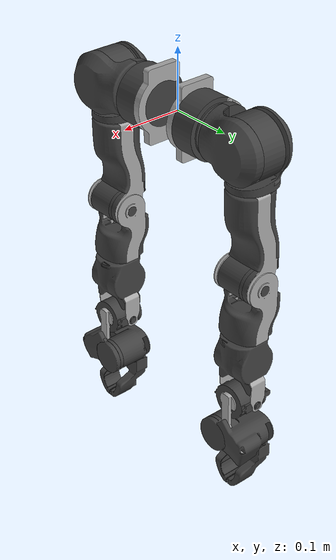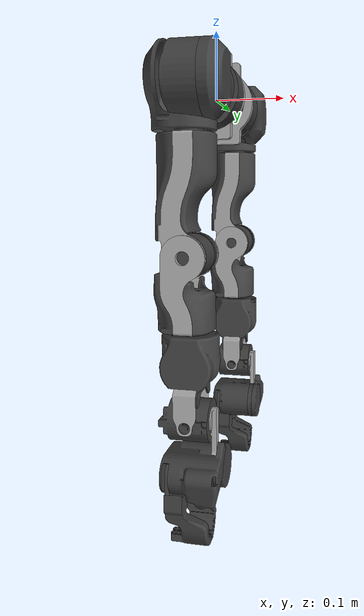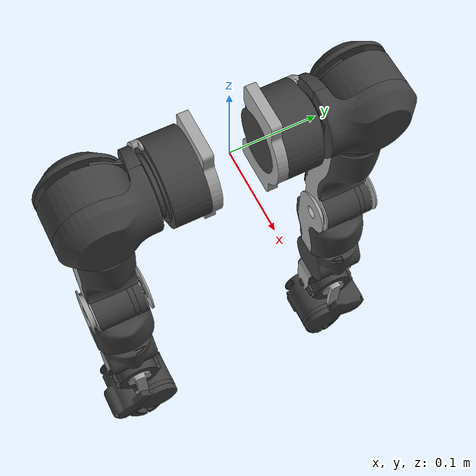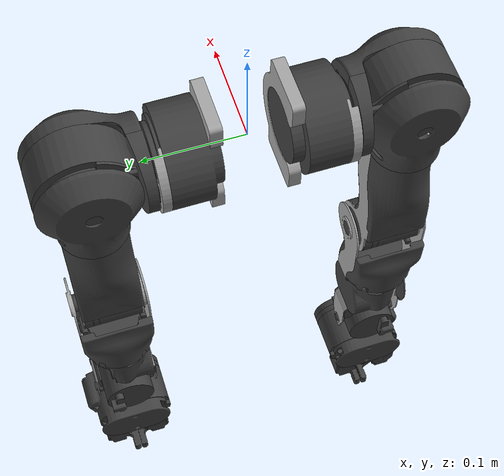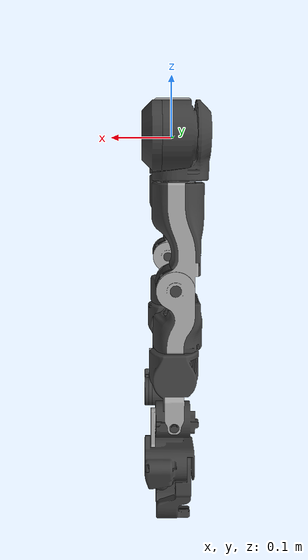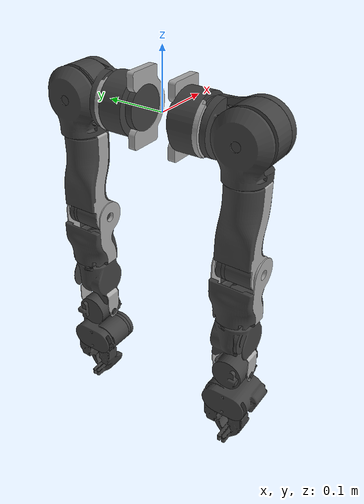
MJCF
<?xml version='1.0' encoding='utf-8'?>
<mujoco model="openarm_v20_visual">
  <default>
    <joint stiffness="0" ref="0.0" />
    <default class="robot">
      <default class="motor_DM8009">
        <joint frictionloss="0.2" damping="1.0" armature="0.0081" limited="true" type="hinge" />
        <motor forcelimited="true" forcerange="-40 40" />
      </default>
      <default class="motor_DM4340">
        <joint frictionloss="0.1" damping="0.9" armature="0.1600" limited="true" type="hinge" />
        <motor forcelimited="true" forcerange="-27 27" />
      </default>
      <default class="motor_DM4310">
        <joint frictionloss="0.04" damping="0.9" armature="0.0100" limited="true" type="hinge" />
        <motor forcelimited="true" forcerange="-7 7" />
      </default>
      <default class="motor_DM3507">
        <joint frictionloss="0.01" damping="0.01" armature="0.0049" limited="true" type="hinge" />
        <motor forcelimited="true" forcerange="-7 7" />
      </default>
      <default class="motor_finger">
        <joint limited="true" type="hinge" damping="2" />
        <position forcelimited="true" forcerange="-333 333" ctrllimited="true" ctrlrange="0 0.7854" />
      </default>
      <default class="lifter">
        <joint limited="true" type="slide" damping="50" />
        <position forcelimited="true" forcerange="-3000 3000" ctrllimited="true" ctrlrange="0 0.3" />
      </default>
      <default class="position_DM8009">
        <position kp="200" kv="150" forcelimited="true" forcerange="-40 40" />
      </default>
      <default class="position_DM4340">
        <position kp="100" kv="30" forcelimited="true" forcerange="-27 27" />
      </default>
      <default class="position_DM4310">
        <position kp="200" kv="5" forcelimited="true" forcerange="-7 7" />
      </default>
      <default class="position_DM3507">
        <position kp="200" kv="5" forcelimited="true" forcerange="-7 7" />
      </default>
      <default class="position_lifter">
        <position kp="8000" kv="4000" forcelimited="true" forcerange="-3000 3000" />
      </default>
      <default class="collision">
        <geom material="collision_material" condim="3" conaffinity="1" priority="1" group="3" solref="0.005 1" friction="1 0.01 0.01" />
        <equality solimp="0.99 0.999 1e-05" solref="0.005 1" />
      </default>
      <default class="visual">
        <geom material="visualgeom" contype="0" conaffinity="0" group="2" />
      </default>
    </default>
  </default>
  <compiler angle="radian" meshdir="assets" />
  <asset>
    <material name="metal_silver" rgba="0.65 0.65 0.65 1.0" specular="1.0" shininess="0.9" reflectance="0.8" />
    <material name="matte_black" rgba="0.247 0.247 0.247 1.0" reflectance="0.05" shininess="0.5" />
    <material name="collision_material" rgba="0.8 0.2 0.2 0.5" />
    <material name="visualgeom" rgba="0.7 0.7 0.7 1" />
    <material name="openarm_body_link0_material" rgba="0.752941 0.752941 0.752941 1" />
    <material name="openarm_silver" rgba="0.627451 0.627451 0.627451 1" specular="1.0" shininess="0.9" reflectance="0.8" />
    <material name="openarm_pale_blue" rgba="0.866667 0.909804 1 1" />
    <material name="openarm_warm_white" rgba="1 0.94902 0.909804 1" />
    <material name="openarm_silver_2" rgba="0.752941 0.752941 0.752941 1" specular="1.0" shininess="0.9" reflectance="0.8" />
    <material name="openarm_dark_gray" rgba="0.247 0.247 0.247 1.0" reflectance="0.05" shininess="0.5" />
    <material name="openarm_neutral_gray" rgba="0.247 0.247 0.247 1.0" reflectance="0.05" shininess="0.5" />
    <material name="openarm_medium_gray" rgba="0.247 0.247 0.247 1.0" reflectance="0.05" shininess="0.5" />
    <mesh name="base_link_left_collision_00" content_type="model/stl" file="collision/base_link.stl" scale="1 -1 1" />
    <mesh name="link1_left_collision_00" content_type="model/stl" file="collision/link1.stl" scale="1 -1 1" />
    <mesh name="link2_left_collision_00" content_type="model/stl" file="collision/link2.stl" scale="1 -1 1" />
    <mesh name="link3_left_collision_00" content_type="model/stl" file="collision/link3.stl" />
    <mesh name="link4_left_collision_00" content_type="model/stl" file="collision/link4.stl" />
    <mesh name="link5_left_collision_00" content_type="model/stl" file="collision/link5_part_00.stl" scale="1 -1 1" />
    <mesh name="link5_left_collision_01" content_type="model/stl" file="collision/link5_part_01.stl" scale="1 -1 1" />
    <mesh name="link5_left_collision_02" content_type="model/stl" file="collision/link5_part_02.stl" scale="1 -1 1" />
    <mesh name="link6_left_collision_00" content_type="model/stl" file="collision/link6.stl" scale="1 -1 1" />
    <mesh name="ee_base_link_left_collision_00" content_type="model/stl" file="collision/ee_base_link.stl" scale="1 -1 1" />
    <mesh name="finger_inner_left_collision_00" content_type="model/stl" file="collision/finger_inner_part_00.stl" scale="1 -1 1" />
    <mesh name="finger_inner_left_collision_01" content_type="model/stl" file="collision/finger_inner_part_01.stl" scale="1 -1 1" />
    <mesh name="finger_inner_left_collision_02" content_type="model/stl" file="collision/finger_inner_part_02.stl" scale="1 -1 1" />
    <mesh name="finger_outer_left_collision_00" content_type="model/stl" file="collision/finger_outer_part_00.stl" scale="1 -1 1" />
    <mesh name="finger_outer_left_collision_01" content_type="model/stl" file="collision/finger_outer_part_01.stl" scale="1 -1 1" />
    <mesh name="finger_outer_left_collision_02" content_type="model/stl" file="collision/finger_outer_part_02.stl" scale="1 -1 1" />
    <mesh name="base_link_right_collision_00" content_type="model/stl" file="collision/base_link.stl" />
    <mesh name="link1_right_collision_00" content_type="model/stl" file="collision/link1.stl" />
    <mesh name="link2_right_collision_00" content_type="model/stl" file="collision/link2.stl" />
    <mesh name="link3_right_collision_00" content_type="model/stl" file="collision/link3.stl" />
    <mesh name="link4_right_collision_00" content_type="model/stl" file="collision/link4.stl" />
    <mesh name="link5_right_collision_00" content_type="model/stl" file="collision/link5_part_00.stl" />
    <mesh name="link5_right_collision_01" content_type="model/stl" file="collision/link5_part_01.stl" />
    <mesh name="link5_right_collision_02" content_type="model/stl" file="collision/link5_part_02.stl" />
    <mesh name="link6_right_collision_00" content_type="model/stl" file="collision/link6.stl" />
    <mesh name="ee_base_link_right_collision_00" content_type="model/stl" file="collision/ee_base_link.stl" />
    <mesh name="finger_inner_right_collision_00" content_type="model/stl" file="collision/finger_inner_part_00.stl" />
    <mesh name="finger_inner_right_collision_01" content_type="model/stl" file="collision/finger_inner_part_01.stl" />
    <mesh name="finger_inner_right_collision_02" content_type="model/stl" file="collision/finger_inner_part_02.stl" />
    <mesh name="finger_outer_right_collision_00" content_type="model/stl" file="collision/finger_outer_part_00.stl" />
    <mesh name="finger_outer_right_collision_01" content_type="model/stl" file="collision/finger_outer_part_01.stl" />
    <mesh name="finger_outer_right_collision_02" content_type="model/stl" file="collision/finger_outer_part_02.stl" />
    <mesh name="link0_0_left" file="visual/arm/link0_0.obj" scale="1 -1 1" />
    <mesh name="link0_1_left" file="visual/arm/link0_1.obj" scale="1 -1 1" />
    <mesh name="link0_2_left" file="visual/arm/link0_2.obj" scale="1 -1 1" />
    <mesh name="link0_0_right" file="visual/arm/link0_0.obj" />
    <mesh name="link0_1_right" file="visual/arm/link0_1.obj" />
    <mesh name="link0_2_right" file="visual/arm/link0_2.obj" />
    <mesh name="link1_0_left" file="visual/arm/link1_0.obj" scale="1 -1 1" />
    <mesh name="link1_1_left" file="visual/arm/link1_1.obj" scale="1 -1 1" />
    <mesh name="link1_2_left" file="visual/arm/link1_2.obj" scale="1 -1 1" />
    <mesh name="link1_0_right" file="visual/arm/link1_0.obj" />
    <mesh name="link1_1_right" file="visual/arm/link1_1.obj" />
    <mesh name="link1_2_right" file="visual/arm/link1_2.obj" />
    <mesh name="link2_0_left" file="visual/arm/link2_0.obj" scale="1 -1 1" />
    <mesh name="link2_0_right" file="visual/arm/link2_0.obj" />
    <mesh name="link3_0_left" file="visual/arm/link3_0.obj" />
    <mesh name="link3_1_left" file="visual/arm/link3_1.obj" />
    <mesh name="link3_2_left" file="visual/arm/link3_2.obj" />
    <mesh name="link3_3_left" file="visual/arm/link3_3.obj" />
    <mesh name="link3_4_left" file="visual/arm/link3_4.obj" />
    <mesh name="link3_5_left" file="visual/arm/link3_5.obj" />
    <mesh name="link3_6_left" file="visual/arm/link3_6.obj" />
    <mesh name="link3_0_right" file="visual/arm/link3_0.obj" />
    <mesh name="link3_1_right" file="visual/arm/link3_1.obj" />
    <mesh name="link3_2_right" file="visual/arm/link3_2.obj" />
    <mesh name="link3_3_right" file="visual/arm/link3_3.obj" />
    <mesh name="link3_4_right" file="visual/arm/link3_4.obj" />
    <mesh name="link3_5_right" file="visual/arm/link3_5.obj" />
    <mesh name="link3_6_right" file="visual/arm/link3_6.obj" />
    <mesh name="link4_0_left" file="visual/arm/link4_0.obj" />
    <mesh name="link4_1_left" file="visual/arm/link4_1.obj" />
    <mesh name="link4_2_left" file="visual/arm/link4_2.obj" />
    <mesh name="link4_3_left" file="visual/arm/link4_3.obj" />
    <mesh name="link4_0_right" file="visual/arm/link4_0.obj" />
    <mesh name="link4_1_right" file="visual/arm/link4_1.obj" />
    <mesh name="link4_2_right" file="visual/arm/link4_2.obj" />
    <mesh name="link4_3_right" file="visual/arm/link4_3.obj" />
    <mesh name="link5_0_left" file="visual/arm/link5_0.obj" scale="1 -1 1" />
    <mesh name="link5_1_left" file="visual/arm/link5_1.obj" scale="1 -1 1" />
    <mesh name="link5_0_right" file="visual/arm/link5_0.obj" />
    <mesh name="link5_1_right" file="visual/arm/link5_1.obj" />
    <mesh name="link6_0_left" file="visual/arm/link6_0.obj" scale="1 -1 1" />
    <mesh name="link6_0_right" file="visual/arm/link6_0.obj" />
    <mesh name="hand_1_left" file="visual/gripper/hand_1.obj" scale="1 -1 1" />
    <mesh name="hand_2_left" file="visual/gripper/hand_2.obj" scale="1 -1 1" />
    <mesh name="hand_3_left" file="visual/gripper/hand_3.obj" scale="1 -1 1" />
    <mesh name="hand_4_left" file="visual/gripper/hand_4.obj" scale="1 -1 1" />
    <mesh name="hand_5_left" file="visual/gripper/hand_5.obj" scale="1 -1 1" />
    <mesh name="hand_1_right" file="visual/gripper/hand_1.obj" />
    <mesh name="hand_2_right" file="visual/gripper/hand_2.obj" />
    <mesh name="hand_3_right" file="visual/gripper/hand_3.obj" />
    <mesh name="hand_4_right" file="visual/gripper/hand_4.obj" />
    <mesh name="hand_5_right" file="visual/gripper/hand_5.obj" />
    <mesh name="finger_outer_left" file="visual/gripper/finger_outer.obj" scale="1 -1 1" />
    <mesh name="finger_outer_right" file="visual/gripper/finger_outer.obj" />
    <mesh name="finger_inner_left" file="visual/gripper/finger_inner.obj" scale="1 -1 1" />
    <mesh name="finger_inner_right" file="visual/gripper/finger_inner.obj" />
  </asset>
  <worldbody>
    <body name="openarm_left_base_link" pos="0 0.031 0">
      <geom name="link0_0_left_vis" type="mesh" class="visual" mesh="link0_0_left" quat="0 0 1 0" material="matte_black" />
      <geom name="link0_1_left_vis" type="mesh" class="visual" mesh="link0_1_left" quat="0 0 1 0" material="metal_silver" />
      <geom name="link0_2_left_vis" type="mesh" class="visual" mesh="link0_2_left" quat="0 0 1 0" material="metal_silver" />
      <inertial pos="-0.00253124 0.0258186 -2.70658e-05" quat="-1.46856942085e-06 0.70739772103 0.706815721259 2.1457591538e-05" mass="1.14323" diaginertia="0.00159935 0.00113608 0.000750542" />
      <geom name="base_link_left_collision_00" type="mesh" mesh="base_link_left_collision_00" class="collision" quat="0 0 1 0" />
      <body name="openarm_left_link1" pos="0 0.0625 0">
        <geom name="link1_0_left_vis" type="mesh" class="visual" mesh="link1_0_left" material="matte_black" />
        <geom name="link1_1_left_vis" type="mesh" class="visual" mesh="link1_1_left" material="matte_black" />
        <geom name="link1_2_left_vis" type="mesh" class="visual" mesh="link1_2_left" material="matte_black" />
        <inertial pos="0.00090035 0.044466 2.88441e-05" quat="0.999901 -0.000371041 -5.04627e-05 -0.0140338" mass="1.14167" diaginertia="0.00109459 0.000758935 0.000670659" />
        <joint name="openarm_left_joint1" pos="0 0 0" axis="0 1 0" range="-3.4907 1.3963" actuatorfrcrange="-40 40" class="motor_DM8009" />
        <geom name="link1_left_collision_00" type="mesh" mesh="link1_left_collision_00" class="collision" />
        <body name="openarm_left_link2" pos="0 0.06 0">
          <geom name="link2_0_left_vis" type="mesh" class="visual" mesh="link2_0_left" material="matte_black" />
          <inertial pos="-0.0247185 -7.60578e-08 -0.0312643" quat="0.999342 -6.47495e-06 -0.0362804 3.02331e-06" mass="0.277509" diaginertia="0.000153968 0.000113062 8.19211e-05" />
          <joint name="openarm_left_joint2" pos="0 0 0" axis="-1 0 0" range="-3.3161 0.17453" actuatorfrcrange="-40 40" class="motor_DM8009" />
          <geom name="link2_left_collision_00" type="mesh" mesh="link2_left_collision_00" class="collision" />
          <body name="openarm_left_link3" pos="0 0 -0.06625">
            <geom name="link3_0_left_vis" type="mesh" class="visual" mesh="link3_0_left" material="matte_black" />
            <geom name="link3_1_left_vis" type="mesh" class="visual" mesh="link3_1_left" material="matte_black" />
            <geom name="link3_2_left_vis" type="mesh" class="visual" mesh="link3_2_left" material="matte_black" />
            <geom name="link3_3_left_vis" type="mesh" class="visual" mesh="link3_3_left" material="metal_silver" />
            <geom name="link3_4_left_vis" type="mesh" class="visual" mesh="link3_4_left" material="matte_black" />
            <geom name="link3_5_left_vis" type="mesh" class="visual" mesh="link3_5_left" material="matte_black" />
            <geom name="link3_6_left_vis" type="mesh" class="visual" mesh="link3_6_left" material="matte_black" />
            <inertial pos="-0.00300862 -0.000514813 -0.109368" quat="0.998906 -0.00891348 0.0458105 0.00280505" mass="1.07386" diaginertia="0.00129561 0.00114038 0.000553361" />
            <joint name="openarm_left_joint3" pos="0 0 0" axis="0 0 -1" range="-1.5708 1.5708" actuatorfrcrange="-27 27" class="motor_DM4340" />
            <geom name="link3_left_collision_00" type="mesh" mesh="link3_left_collision_00" class="collision" />
            <body name="openarm_left_link4" pos="0 0 -0.15375">
              <geom name="link4_0_left_vis" type="mesh" class="visual" mesh="link4_0_left" material="matte_black" />
              <geom name="link4_1_left_vis" type="mesh" class="visual" mesh="link4_1_left" material="matte_black" />
              <geom name="link4_2_left_vis" type="mesh" class="visual" mesh="link4_2_left" material="metal_silver" />
              <geom name="link4_3_left_vis" type="mesh" class="visual" mesh="link4_3_left" material="metal_silver" />
              <inertial pos="-0.00310326 -0.00136539 -0.0574601" quat="0.996952 0.00947325 0.00348083 0.0773554" mass="0.634853" diaginertia="0.000469894 0.000433114 0.000245134" />
              <joint name="openarm_left_joint4" pos="0 0 0" axis="0 -1 0" range="0 2.4435" actuatorfrcrange="-27 27" class="motor_DM4340" />
              <geom name="link4_left_collision_00" type="mesh" mesh="link4_left_collision_00" class="collision" />
              <body name="openarm_left_link5" pos="0 0 -0.0955">
                <geom name="link5_0_left_vis" type="mesh" class="visual" mesh="link5_0_left" material="matte_black" />
                <geom name="link5_1_left_vis" type="mesh" class="visual" mesh="link5_1_left" material="metal_silver" />
                <inertial pos="-0.000737189 0.000412407 -0.0470938" quat="0.685547 -0.0023482 -0.00297125 0.728019" mass="0.615659" diaginertia="0.000334799 0.00027946 0.000176657" />
                <joint name="openarm_left_joint5" pos="0 0 0" axis="0 0 -1" range="-1.5708 1.5708" actuatorfrcrange="-7 7" class="motor_DM4310" />
                <geom name="link5_left_collision_00" type="mesh" mesh="link5_left_collision_00" class="collision" />
                <geom name="link5_left_collision_01" type="mesh" mesh="link5_left_collision_01" class="collision" />
                <geom name="link5_left_collision_02" type="mesh" mesh="link5_left_collision_02" class="collision" />
                <body name="openarm_left_link6" pos="0 0 -0.1205">
                  <geom name="link6_0_left_vis" type="mesh" class="visual" mesh="link6_0_left" material="matte_black" />
                  <inertial pos="2.27438e-05 -0.000686496 5.44e-05" quat="0.999832 -0.0183155 0.000397003 -0.000757974" mass="0.475203" diaginertia="0.000179276 0.000136249 0.000135339" />
                  <joint name="openarm_left_joint6" pos="0 0 0" axis="0 -1 0" range="-0.7854 0.7854" actuatorfrcrange="-7 7" class="motor_DM4310" />
                  <geom name="link6_left_collision_00" type="mesh" mesh="link6_left_collision_00" class="collision" />
                  <body name="openarm_left_ee_base_link">
                    <geom name="hand_1_left_vis" type="mesh" class="visual" mesh="hand_1_left" pos="0.0205 0 0" quat="1 0 0 0" material="matte_black" />
                    <geom name="hand_2_left_vis" type="mesh" class="visual" mesh="hand_2_left" pos="0.0205 0 0" quat="1 0 0 0" material="matte_black" />
                    <geom name="hand_3_left_vis" type="mesh" class="visual" mesh="hand_3_left" pos="0.0205 0 0" quat="1 0 0 0" material="matte_black" />
                    <geom name="hand_4_left_vis" type="mesh" class="visual" mesh="hand_4_left" pos="0.0205 0 0" quat="1 0 0 0" material="metal_silver" />
                    <geom name="hand_5_left_vis" type="mesh" class="visual" mesh="hand_5_left" pos="0.0205 0 0" quat="1 0 0 0" material="metal_silver" />
                    <inertial pos="0.0137902 -0.0084073 -0.05938" quat="0.760121 0.648846 -0.0304587 -0.0169317" mass="0.52832" diaginertia="0.000219417 0.000166122 0.000155742" />
                    <joint name="openarm_left_joint7" pos="0 0 0" axis="1 0 0" range="-1.5708 1.5708" actuatorfrcrange="-7 7" class="motor_DM3507" />
                    <geom name="ee_base_link_left_collision_00" pos="0.0205 0 0" quat="1 0 0 0" type="mesh" mesh="ee_base_link_left_collision_00" class="collision" />
                    <camera name="camera_wrist_left" pos="-0.001 -0.020 0.096" euler="2.8274 0.22689 -1.5708" />
                    <site name="left_ee_control_point" pos="0 0 0.0" size="0.01" rgba="0 1 0 1" />
                    <body name="openarm_left_ee_inner_finger" pos="-0.00143 -0.018 -0.068">
                      <geom name="finger_inner_left_vis" type="mesh" class="visual" mesh="finger_inner_left" material="matte_black" />
                      <inertial pos="-0.0124991 -0.00176593 -0.0241663" quat="0.982638 0.0922084 -0.15927 -0.0235197" mass="0.125979" diaginertia="3.8543e-05 3.6883e-05 1.43942e-05" />
                      <joint name="openarm_left_finger_joint1" pos="0 0 0" axis="-1 0 0" range="0 0.7854" actuatorfrcrange="-10 10" class="motor_finger" />
                      <geom name="finger_inner_left_collision_00" type="mesh" mesh="finger_inner_left_collision_00" class="collision" />
                      <geom name="finger_inner_left_collision_01" type="mesh" mesh="finger_inner_left_collision_01" class="collision" />
                      <geom name="finger_inner_left_collision_02" type="mesh" mesh="finger_inner_left_collision_02" class="collision" />
                    </body>
                    <body name="openarm_left_ee_outer_finger" pos="-0.00143 0.018 -0.068">
                      <geom name="finger_outer_left_vis" type="mesh" class="visual" mesh="finger_outer_left" material="matte_black" />
                      <inertial pos="-0.012796 0.0020183 -0.026792" quat="0.982097 -0.0906989 -0.165079 0.00294117" mass="0.11372" diaginertia="3.70662e-05 3.60159e-05 1.33599e-05" />
                      <joint name="openarm_left_finger_joint2" pos="0 0 0" axis="1 0 0" range="0 0.7854" actuatorfrcrange="-7 7" class="motor_finger" />
                      <geom name="finger_outer_left_collision_00" type="mesh" mesh="finger_outer_left_collision_00" class="collision" />
                      <geom name="finger_outer_left_collision_01" type="mesh" mesh="finger_outer_left_collision_01" class="collision" />
                      <geom name="finger_outer_left_collision_02" type="mesh" mesh="finger_outer_left_collision_02" class="collision" />
                    </body>
                  </body>
                </body>
              </body>
            </body>
          </body>
        </body>
      </body>
    </body>
    <body name="openarm_right_base_link" pos="0 -0.031 0">
      <geom name="link0_0_right_vis" type="mesh" class="visual" mesh="link0_0_right" quat="0 0 1 0" material="matte_black" />
      <geom name="link0_1_right_vis" type="mesh" class="visual" mesh="link0_1_right" quat="0 0 1 0" material="metal_silver" />
      <geom name="link0_2_right_vis" type="mesh" class="visual" mesh="link0_2_right" quat="0 0 1 0" material="metal_silver" />
      <inertial pos="-0.00253124 -0.0258186 -2.70658e-05" quat="2.1457591538e-05 0.706815721259 0.70739772103 -1.46856942085e-06" mass="1.14323" diaginertia="0.00159935 0.00113608 0.000750542" />
      <geom name="base_link_right_collision_00" type="mesh" mesh="base_link_right_collision_00" class="collision" quat="0 0 1 0" />
      <body name="openarm_right_link1" pos="0 -0.0625 0">
        <geom name="link1_0_right_vis" type="mesh" class="visual" mesh="link1_0_right" material="matte_black" />
        <geom name="link1_1_right_vis" type="mesh" class="visual" mesh="link1_1_right" material="matte_black" />
        <geom name="link1_2_right_vis" type="mesh" class="visual" mesh="link1_2_right" material="matte_black" />
        <inertial pos="0.00090035 -0.044466 2.88441e-05" quat="0.999901 0.000371041 -5.04627e-05 0.0140338" mass="1.14167" diaginertia="0.00109459 0.000758935 0.000670659" />
        <joint name="openarm_right_joint1" pos="0 0 0" axis="0 -1 0" range="-1.3963 3.4907" actuatorfrcrange="-40 40" class="motor_DM8009" />
        <geom name="link1_right_collision_00" type="mesh" mesh="link1_right_collision_00" class="collision" />
        <body name="openarm_right_link2" pos="0 -0.06 0">
          <geom name="link2_0_right_vis" type="mesh" class="visual" mesh="link2_0_right" material="matte_black" />
          <inertial pos="-0.0247185 7.60578e-08 -0.0312643" quat="0.999342 6.47495e-06 -0.0362804 -3.02331e-06" mass="0.277509" diaginertia="0.000153968 0.000113062 8.19211e-05" />
          <joint name="openarm_right_joint2" pos="0 0 0" axis="-1 0 0" range="-0.17453 3.3161" actuatorfrcrange="-40 40" class="motor_DM8009" />
          <geom name="link2_right_collision_00" type="mesh" mesh="link2_right_collision_00" class="collision" />
          <body name="openarm_right_link3" pos="0 0 -0.06625">
            <geom name="link3_0_right_vis" type="mesh" class="visual" mesh="link3_0_right" material="matte_black" />
            <geom name="link3_1_right_vis" type="mesh" class="visual" mesh="link3_1_right" material="matte_black" />
            <geom name="link3_2_right_vis" type="mesh" class="visual" mesh="link3_2_right" material="matte_black" />
            <geom name="link3_3_right_vis" type="mesh" class="visual" mesh="link3_3_right" material="metal_silver" />
            <geom name="link3_4_right_vis" type="mesh" class="visual" mesh="link3_4_right" material="matte_black" />
            <geom name="link3_5_right_vis" type="mesh" class="visual" mesh="link3_5_right" material="matte_black" />
            <geom name="link3_6_right_vis" type="mesh" class="visual" mesh="link3_6_right" material="matte_black" />
            <inertial pos="-0.00300862 -0.000514813 -0.109368" quat="0.998906 -0.00891348 0.0458105 0.00280505" mass="1.07386" diaginertia="0.00129561 0.00114038 0.000553361" />
            <joint name="openarm_right_joint3" pos="0 0 0" axis="0 0 -1" range="-1.5708 1.5708" actuatorfrcrange="-27 27" class="motor_DM4340" />
            <geom name="link3_right_collision_00" type="mesh" mesh="link3_right_collision_00" class="collision" />
            <body name="openarm_right_link4" pos="0 0 -0.15375">
              <geom name="link4_0_right_vis" type="mesh" class="visual" mesh="link4_0_right" material="matte_black" />
              <geom name="link4_1_right_vis" type="mesh" class="visual" mesh="link4_1_right" material="matte_black" />
              <geom name="link4_2_right_vis" type="mesh" class="visual" mesh="link4_2_right" material="metal_silver" />
              <geom name="link4_3_right_vis" type="mesh" class="visual" mesh="link4_3_right" material="metal_silver" />
              <inertial pos="-0.00310326 -0.00136539 -0.0574601" quat="0.996952 0.00947325 0.00348083 0.0773554" mass="0.634853" diaginertia="0.000469894 0.000433114 0.000245134" />
              <joint name="openarm_right_joint4" pos="0 0 0" axis="0 -1 0" range="0 2.4435" actuatorfrcrange="-27 27" class="motor_DM4340" />
              <geom name="link4_right_collision_00" type="mesh" mesh="link4_right_collision_00" class="collision" />
              <body name="openarm_right_link5" pos="0 0 -0.0955">
                <geom name="link5_0_right_vis" type="mesh" class="visual" mesh="link5_0_right" material="matte_black" />
                <geom name="link5_1_right_vis" type="mesh" class="visual" mesh="link5_1_right" material="metal_silver" />
                <inertial pos="-0.000737189 -0.000412407 -0.0470938" quat="0.728019 -0.00297125 -0.0023482 0.685547" mass="0.615659" diaginertia="0.000334799 0.00027946 0.000176657" />
                <joint name="openarm_right_joint5" pos="0 0 0" axis="0 0 -1" range="-1.5708 1.5708" actuatorfrcrange="-7 7" class="motor_DM4310" />
                <geom name="link5_right_collision_00" type="mesh" mesh="link5_right_collision_00" class="collision" />
                <geom name="link5_right_collision_01" type="mesh" mesh="link5_right_collision_01" class="collision" />
                <geom name="link5_right_collision_02" type="mesh" mesh="link5_right_collision_02" class="collision" />
                <body name="openarm_right_link6" pos="0 0 -0.1205">
                  <geom name="link6_0_right_vis" type="mesh" class="visual" mesh="link6_0_right" material="matte_black" />
                  <inertial pos="2.27438e-05 0.000686496 5.44e-05" quat="0.999832 0.0183155 0.000397003 0.000757974" mass="0.475203" diaginertia="0.000179276 0.000136249 0.000135339" />
                  <joint name="openarm_right_joint6" pos="0 0 0" axis="0 1 0" range="-0.7854 0.7854" actuatorfrcrange="-7 7" class="motor_DM4310" />
                  <geom name="link6_right_collision_00" type="mesh" mesh="link6_right_collision_00" class="collision" />
                  <body name="openarm_right_ee_base_link">
                    <geom name="hand_1_right_vis" type="mesh" class="visual" mesh="hand_1_right" pos="0.0205 0 0" quat="1 0 0 0" material="matte_black" />
                    <geom name="hand_2_right_vis" type="mesh" class="visual" mesh="hand_2_right" pos="0.0205 0 0" quat="1 0 0 0" material="matte_black" />
                    <geom name="hand_3_right_vis" type="mesh" class="visual" mesh="hand_3_right" pos="0.0205 0 0" quat="1 0 0 0" material="matte_black" />
                    <geom name="hand_4_right_vis" type="mesh" class="visual" mesh="hand_4_right" pos="0.0205 0 0" quat="1 0 0 0" material="metal_silver" />
                    <geom name="hand_5_right_vis" type="mesh" class="visual" mesh="hand_5_right" pos="0.0205 0 0" quat="1 0 0 0" material="metal_silver" />
                    <inertial pos="0.0137902 0.0084073 -0.05938" quat="0.648846 0.760121 0.0169317 0.0304587" mass="0.52832" diaginertia="0.000219417 0.000166122 0.000155742" />
                    <joint name="openarm_right_joint7" pos="0 0 0" axis="1 0 0" range="-1.5708 1.5708" actuatorfrcrange="-7 7" class="motor_DM3507" />
                    <geom name="ee_base_link_right_collision_00" pos="0.0205 0 0" quat="1 0 0 0" type="mesh" mesh="ee_base_link_right_collision_00" class="collision" />
                    <camera name="camera_wrist_right" pos="-0.001 0.020 0.096" euler="-2.8274 0.22689 -1.5708" />
                    <site name="right_ee_control_point" pos="0.0 0.0 0.0" size="0.01" rgba="1 0 0 1" />
                    <body name="openarm_right_ee_inner_finger" pos="-0.00143 0.018 -0.068">
                      <geom name="finger_inner_right_vis" type="mesh" class="visual" mesh="finger_inner_right" material="matte_black" />
                      <inertial pos="-0.0124991 0.00176593 -0.0241663" quat="0.982638 -0.0922084 -0.15927 0.0235197" mass="0.125979" diaginertia="3.8543e-05 3.6883e-05 1.43942e-05" />
                      <joint name="openarm_right_finger_joint1" pos="0 0 0" axis="-1 0 0" range="-0.7854 0" actuatorfrcrange="-7 7" class="motor_finger" />
                      <geom name="finger_inner_right_collision_00" type="mesh" mesh="finger_inner_right_collision_00" class="collision" />
                      <geom name="finger_inner_right_collision_01" type="mesh" mesh="finger_inner_right_collision_01" class="collision" />
                      <geom name="finger_inner_right_collision_02" type="mesh" mesh="finger_inner_right_collision_02" class="collision" />
                    </body>
                    <body name="openarm_right_ee_outer_finger" pos="-0.00143 -0.018 -0.068">
                      <geom name="finger_outer_right_vis" type="mesh" class="visual" mesh="finger_outer_right" material="matte_black" />
                      <inertial pos="-0.012796 -0.0020183 -0.026792" quat="0.982097 0.0906989 -0.165079 -0.00294117" mass="0.11372" diaginertia="3.70662e-05 3.60159e-05 1.33599e-05" />
                      <joint name="openarm_right_finger_joint2" pos="0 0 0" axis="1 0 0" range="-0.7854 0" actuatorfrcrange="-7 7" class="motor_finger" />
                      <geom name="finger_outer_right_collision_00" type="mesh" mesh="finger_outer_right_collision_00" class="collision" />
                      <geom name="finger_outer_right_collision_01" type="mesh" mesh="finger_outer_right_collision_01" class="collision" />
                      <geom name="finger_outer_right_collision_02" type="mesh" mesh="finger_outer_right_collision_02" class="collision" />
                    </body>
                  </body>
                </body>
              </body>
            </body>
          </body>
        </body>
      </body>
    </body>
  </worldbody>
  <equality>
    <joint name="openarm_left_ee_finger_joint_mimic" joint1="openarm_left_finger_joint1" joint2="openarm_left_finger_joint2" polycoef="0 1 0 0 0" solimp="0.95 0.99 0.001" solref="0.005 1" />
    <joint name="openarm_right_ee_finger_joint_mimic" joint1="openarm_right_finger_joint1" joint2="openarm_right_finger_joint2" polycoef="0 1 0 0 0" solimp="0.95 0.99 0.001" solref="0.005 1" />
  </equality>
  <actuator>
    <position name="left_joint1_ctrl" joint="openarm_left_joint1" class="position_DM8009" kp="230" kv="2.7" ctrllimited="true" ctrlrange="-3.49066 1.39626" />
    <position name="left_joint2_ctrl" joint="openarm_left_joint2" class="position_DM8009" kp="230" kv="2.7" ctrllimited="true" ctrlrange="-3.31613 0.174533" />
    <position name="left_joint3_ctrl" joint="openarm_left_joint3" class="position_DM4340" kp="190" kv="2.2" ctrllimited="true" ctrlrange="-1.5708 1.5708" />
    <position name="left_joint4_ctrl" joint="openarm_left_joint4" class="position_DM4340" kp="190" kv="2.2" ctrllimited="true" ctrlrange="0 2.44346" />
    <position name="left_joint5_ctrl" joint="openarm_left_joint5" class="position_DM4310" kp="30" kv="1.5" ctrllimited="true" ctrlrange="-1.5708 1.5708" />
    <position name="left_joint6_ctrl" joint="openarm_left_joint6" class="position_DM4310" kp="30" kv="1.5" ctrllimited="true" ctrlrange="-0.785398 0.785398" />
    <position name="left_joint7_ctrl" joint="openarm_left_joint7" class="position_DM4310" kp="30" kv="1.5" ctrllimited="true" ctrlrange="-1.5708 1.5708" />
    <position name="left_finger1_ctrl" joint="openarm_left_finger_joint1" class="position_DM4310" kp="30" kv="0.2" ctrllimited="true" ctrlrange="0 0.7854" />
    <position name="right_joint1_ctrl" joint="openarm_right_joint1" class="position_DM8009" kp="230" kv="2.7" ctrllimited="true" ctrlrange="-1.39626 3.49066" />
    <position name="right_joint2_ctrl" joint="openarm_right_joint2" class="position_DM8009" kp="230" kv="2.7" ctrllimited="true" ctrlrange="-0.174533 3.31613" />
    <position name="right_joint3_ctrl" joint="openarm_right_joint3" class="position_DM4340" kp="190" kv="2.2" ctrllimited="true" ctrlrange="-1.5708 1.5708" />
    <position name="right_joint4_ctrl" joint="openarm_right_joint4" class="position_DM4340" kp="190" kv="2.2" ctrllimited="true" ctrlrange="0 2.44346" />
    <position name="right_joint5_ctrl" joint="openarm_right_joint5" class="position_DM4310" kp="30" kv="1.5" ctrllimited="true" ctrlrange="-1.5708 1.5708" />
    <position name="right_joint6_ctrl" joint="openarm_right_joint6" class="position_DM4310" kp="30" kv="1.5" ctrllimited="true" ctrlrange="-0.785398 0.785398" />
    <position name="right_joint7_ctrl" joint="openarm_right_joint7" class="position_DM4310" kp="30" kv="1.5" ctrllimited="true" ctrlrange="-1.5708 1.5708" />
    <position name="right_finger1_ctrl" joint="openarm_right_finger_joint1" class="position_DM4310" kp="30" kv="0.2" ctrllimited="true" ctrlrange="-0.7854 0" />
  </actuator>
  <contact>

  </contact>
</mujoco>
